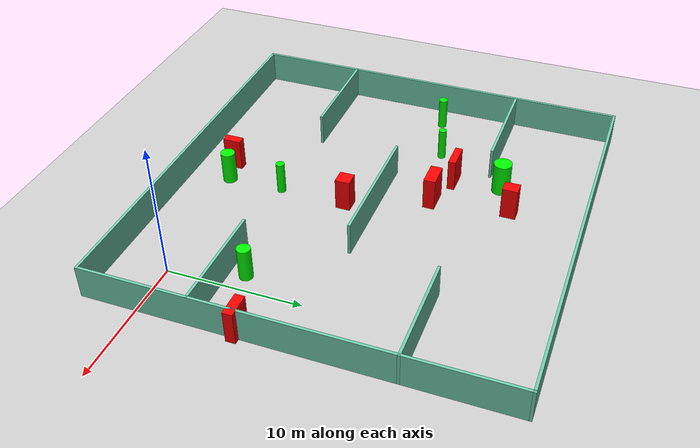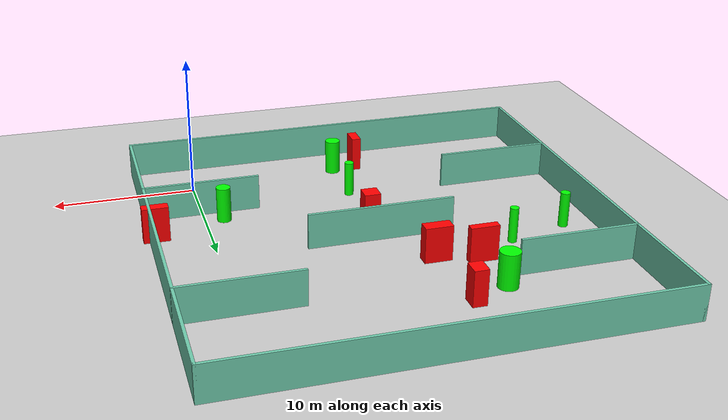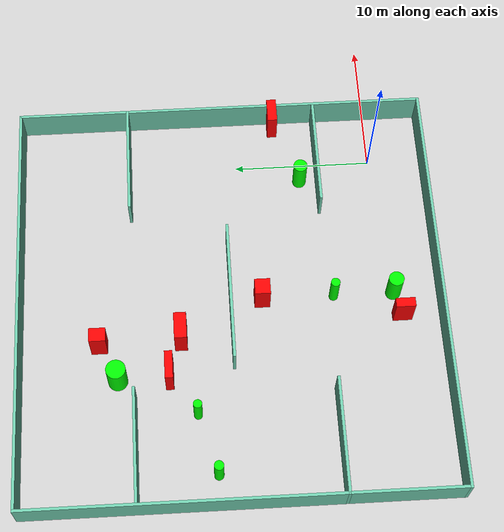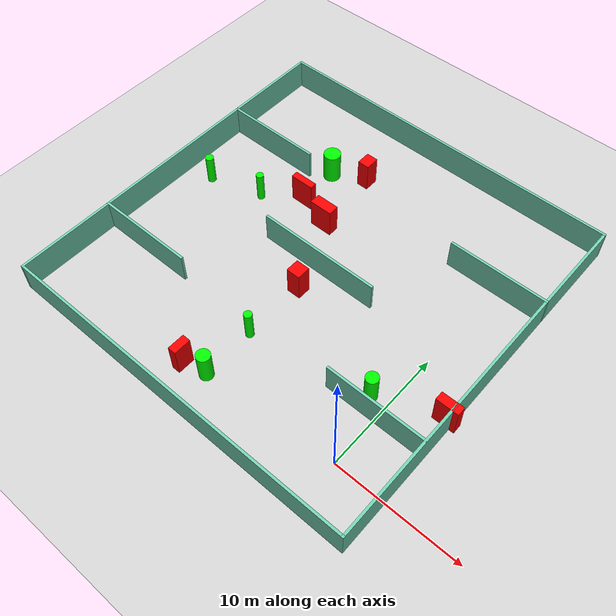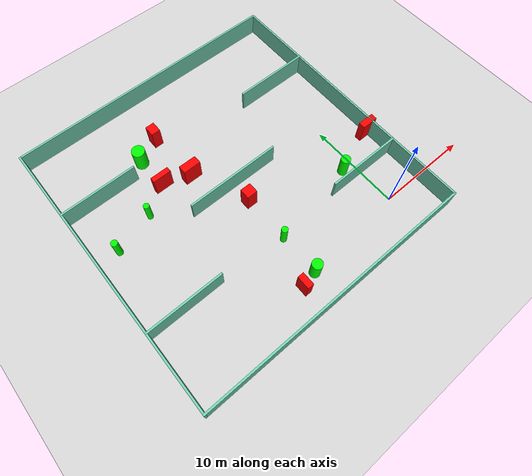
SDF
<sdf version="1.7">
 <world name="default">
  <light name="sun" type="directional">
   <pose>0 0 10 0 -0 0</pose>
   <diffuse>0.8 0.8 0.8 1</diffuse>
   <specular>0.2 0.2 0.2 1</specular>
   <attenuation>
    <range>1000</range>
    <constant>0.9</constant>
    <linear>0.01</linear>
    <quadratic>0.001</quadratic>
   </attenuation>
   <direction>-0.5 0.1 -0.9</direction>
   <spot><inner_angle>0</inner_angle><outer_angle>0</outer_angle><falloff>0</falloff></spot>
  </light>
  <model name="ground_plane">
   <static>1</static>
   <link name="link">
    <collision name="collision">
     <geometry><plane><normal>0 0 1</normal><size>100 100</size></plane></geometry>
     <surface>
      <contact><collide_bitmask>65535</collide_bitmask></contact>
      <friction><ode><mu>100</mu><mu2>50</mu2></ode></friction>
     </surface>
    </collision>
    <visual name="visual">
     <cast_shadows>0</cast_shadows>
     <geometry><plane><normal>0 0 1</normal><size>100 100</size></plane></geometry>
     <material>
      <script><uri>file://media/materials/scripts/gazebo.material</uri><name>Gazebo/Grey</name></script>
     </material>
    </visual>
   </link>
  </model>
  <gravity>0 0 -9.8</gravity>
  <magnetic_field>6e-06 2.3e-05 -4.2e-05</magnetic_field>
  <atmosphere type="adiabatic"/>
  <physics type="ode">
   <max_step_size>0.001</max_step_size>
   <real_time_factor>1</real_time_factor>
   <real_time_update_rate>1000</real_time_update_rate>
  </physics>
  <scene><ambient>0.4 0.4 0.4 1</ambient><background>0.7 0.7 0.7 1</background><shadows>1</shadows></scene>
  <spherical_coordinates>
   <surface_model>EARTH_WGS84</surface_model>
   <latitude_deg>0</latitude_deg>
   <longitude_deg>0</longitude_deg>
   <elevation>0</elevation>
   <heading_deg>0</heading_deg>
  </spherical_coordinates>
  <model name="my_base_walls">
   <link name="Wall_10">
    <collision name="Wall_10_Collision">
     <geometry><box><size>8.2 0.2 2.5</size></box></geometry>
     <pose>0 0 1.25 0 -0 0</pose>
    </collision>
    <visual name="Wall_10_Visual">
     <pose>0 0 1.25 0 -0 0</pose>
     <geometry><box><size>8.2 0.2 2.5</size></box></geometry>
     <material>
      <script><uri>file://media/materials/scripts/gazebo.material</uri><name>Gazebo/Grey</name></script>
      <ambient>0.435294 0.796078 0.67451 1</ambient>
     </material>
     <meta><layer>0</layer></meta>
    </visual>
    <pose>-11 -7 0 0 -0 0</pose>
   </link>
   <link name="Wall_12">
    <collision name="Wall_12_Collision">
     <geometry><box><size>8.2 0.2 2.5</size></box></geometry>
     <pose>0 0 1.25 0 -0 0</pose>
    </collision>
    <visual name="Wall_12_Visual">
     <pose>0 0 1.25 0 -0 0</pose>
     <geometry><box><size>8.2 0.2 2.5</size></box></geometry>
     <material>
      <script><uri>file://media/materials/scripts/gazebo.material</uri><name>Gazebo/Grey</name></script>
      <ambient>0.435294 0.796078 0.67451 1</ambient>
     </material>
     <meta><layer>0</layer></meta>
    </visual>
    <pose>-11 7 0 0 -0 0</pose>
   </link>
   <link name="Wall_14">
    <collision name="Wall_14_Collision">
     <geometry><box><size>8.2 0.2 2.5</size></box></geometry>
     <pose>0 0 1.25 0 -0 0</pose>
    </collision>
    <visual name="Wall_14_Visual">
     <pose>0 0 1.25 0 -0 0</pose>
     <geometry><box><size>8.2 0.2 2.5</size></box></geometry>
     <material>
      <script><uri>file://media/materials/scripts/gazebo.material</uri><name>Gazebo/Grey</name></script>
      <ambient>0.435294 0.796078 0.67451 1</ambient>
     </material>
     <meta><layer>0</layer></meta>
    </visual>
    <pose>11 7 0 0 -0 3.14159</pose>
   </link>
   <link name="Wall_16">
    <collision name="Wall_16_Collision">
     <geometry><box><size>10.2 0.2 2.5</size></box></geometry>
     <pose>0 0 1.25 0 -0 0</pose>
    </collision>
    <visual name="Wall_16_Visual">
     <pose>0 0 1.25 0 -0 0</pose>
     <geometry><box><size>10.2 0.2 2.5</size></box></geometry>
     <material>
      <script><uri>file://media/materials/scripts/gazebo.material</uri><name>Gazebo/Grey</name></script>
      <ambient>0.435294 0.796078 0.67451 1</ambient>
     </material>
     <meta><layer>0</layer></meta>
    </visual>
    <pose>0 0 0 0 -0 3.14159</pose>
   </link>
   <link name="Wall_2">
    <collision name="Wall_2_Collision">
     <geometry><box><size>30.2 0.2 2.5</size></box></geometry>
     <pose>0 0 1.25 0 -0 0</pose>
    </collision>
    <visual name="Wall_2_Visual">
     <pose>0 0 1.25 0 -0 0</pose>
     <geometry><box><size>30.2 0.2 2.5</size></box></geometry>
     <material>
      <script><uri>file://media/materials/scripts/gazebo.material</uri><name>Gazebo/Grey</name></script>
      <ambient>0.435294 0.796078 0.67451 1</ambient>
     </material>
     <meta><layer>0</layer></meta>
    </visual>
    <pose>0 -15 0 0 -0 3.14159</pose>
   </link>
   <link name="Wall_3">
    <collision name="Wall_3_Collision">
     <geometry><box><size>30.2 0.2 2.5</size></box></geometry>
     <pose>0 0 1.25 0 -0 0</pose>
    </collision>
    <visual name="Wall_3_Visual">
     <pose>0 0 1.25 0 -0 0</pose>
     <geometry><box><size>30.2 0.2 2.5</size></box></geometry>
     <material>
      <script><uri>file://media/materials/scripts/gazebo.material</uri><name>Gazebo/Grey</name></script>
      <ambient>0.435294 0.796078 0.67451 1</ambient>
     </material>
     <meta><layer>0</layer></meta>
    </visual>
    <pose>-15 0 0 0 -0 1.5708</pose>
   </link>
   <link name="Wall_4">
    <collision name="Wall_4_Collision">
     <geometry><box><size>30.2 0.2 2.5</size></box></geometry>
     <pose>0 0 1.25 0 -0 0</pose>
    </collision>
    <visual name="Wall_4_Visual">
     <pose>0 0 1.25 0 -0 0</pose>
     <geometry><box><size>30.2 0.2 2.5</size></box></geometry>
     <material>
      <script><uri>file://media/materials/scripts/gazebo.material</uri><name>Gazebo/Grey</name></script>
      <ambient>0.435294 0.796078 0.67451 1</ambient>
     </material>
     <meta><layer>0</layer></meta>
    </visual>
    <pose>0 15 0 0 -0 0</pose>
   </link>
   <link name="Wall_6">
    <collision name="Wall_6_Collision">
     <geometry><box><size>30.2 0.2 2.5</size></box></geometry>
     <pose>0 0 1.25 0 -0 0</pose>
    </collision>
    <visual name="Wall_6_Visual">
     <pose>0 0 1.25 0 -0 0</pose>
     <geometry><box><size>30.2 0.2 2.5</size></box></geometry>
     <material>
      <script><uri>file://media/materials/scripts/gazebo.material</uri><name>Gazebo/Grey</name></script>
      <ambient>0.435294 0.796078 0.67451 1</ambient>
     </material>
     <meta><layer>0</layer></meta>
    </visual>
    <pose>15 0 0 0 -0 1.5708</pose>
   </link>
   <link name="Wall_8">
    <collision name="Wall_8_Collision">
     <geometry><box><size>8.2 0.2 2.5</size></box></geometry>
     <pose>0 0 1.25 0 -0 0</pose>
    </collision>
    <visual name="Wall_8_Visual">
     <pose>0 0 1.25 0 -0 0</pose>
     <geometry><box><size>8.2 0.2 2.5</size></box></geometry>
     <material>
      <script><uri>file://media/materials/scripts/gazebo.material</uri><name>Gazebo/Grey</name></script>
      <ambient>0.435294 0.796078 0.67451 1</ambient>
     </material>
     <meta><layer>0</layer></meta>
    </visual>
    <pose>11 -7 0 0 -0 3.14159</pose>
   </link>
   <static>1</static>
   <pose>-11 11 0 0 -0 0</pose>
  </model>
  <model name="cylinder1">
   <static>1</static>
   <link name="link">
    <inertial>
     <mass>1</mass>
     <inertia><ixx>0.5</ixx><ixy>0</ixy><ixz>0</ixz><iyy>0.5</iyy><iyz>0</iyz><izz>1</izz></inertia>
    </inertial>
    <collision name="collision">
     <geometry><cylinder><radius>0.3366861672104046</radius><length>2.5</length></cylinder></geometry>
    </collision>
    <visual name="visual">
     <geometry><cylinder><radius>0.3366861672104046</radius><length>2.5</length></cylinder></geometry>
     <material>
      <ambient>0 1 0 1</ambient>
      <diffuse>0 1 0 1</diffuse>
      <specular>0.1 0.1 0.1 1</specular>
      <emissive>0 0 0 0</emissive>
     </material>
    </visual>
   </link>
   <pose>-23.702162040381364 12.46133202046187 1.25 0 0 0</pose>
  </model>
  <model name="cylinder2">
   <static>1</static>
   <link name="link">
    <inertial>
     <mass>1</mass>
     <inertia><ixx>0.5</ixx><ixy>0</ixy><ixz>0</ixz><iyy>0.5</iyy><iyz>0</iyz><izz>1</izz></inertia>
    </inertial>
    <collision name="collision">
     <geometry><cylinder><radius>0.6918408097810407</radius><length>2.5</length></cylinder></geometry>
    </collision>
    <visual name="visual">
     <geometry><cylinder><radius>0.6918408097810407</radius><length>2.5</length></cylinder></geometry>
     <material>
      <ambient>0 1 0 1</ambient>
      <diffuse>0 1 0 1</diffuse>
      <specular>0.1 0.1 0.1 1</specular>
      <emissive>0 0 0 0</emissive>
     </material>
    </visual>
   </link>
   <pose>-16.602370327350467 19.18861517111823 1.25 0 0 0</pose>
  </model>
  <model name="cylinder3">
   <static>1</static>
   <link name="link">
    <inertial>
     <mass>1</mass>
     <inertia><ixx>0.5</ixx><ixy>0</ixy><ixz>0</ixz><iyy>0.5</iyy><iyz>0</iyz><izz>1</izz></inertia>
    </inertial>
    <collision name="collision">
     <geometry><cylinder><radius>0.32463548138603376</radius><length>2.5</length></cylinder></geometry>
    </collision>
    <visual name="visual">
     <geometry><cylinder><radius>0.32463548138603376</radius><length>2.5</length></cylinder></geometry>
     <material>
      <ambient>0 1 0 1</ambient>
      <diffuse>0 1 0 1</diffuse>
      <specular>0.1 0.1 0.1 1</specular>
      <emissive>0 0 0 0</emissive>
     </material>
    </visual>
   </link>
   <pose>-10.91864391184857 3.570885555307207 1.25 0 0 0</pose>
  </model>
  <model name="cylinder4">
   <static>1</static>
   <link name="link">
    <inertial>
     <mass>1</mass>
     <inertia><ixx>0.5</ixx><ixy>0</ixy><ixz>0</ixz><iyy>0.5</iyy><iyz>0</iyz><izz>1</izz></inertia>
    </inertial>
    <collision name="collision">
     <geometry><cylinder><radius>0.4988295311312091</radius><length>2.5</length></cylinder></geometry>
    </collision>
    <visual name="visual">
     <geometry><cylinder><radius>0.4988295311312091</radius><length>2.5</length></cylinder></geometry>
     <material>
      <ambient>0 1 0 1</ambient>
      <diffuse>0 1 0 1</diffuse>
      <specular>0.1 0.1 0.1 1</specular>
      <emissive>0 0 0 0</emissive>
     </material>
    </visual>
   </link>
   <pose>-1.3348234467473965 5.305463349503917 1.25 0 0 0</pose>
  </model>
  <model name="cylinder5">
   <static>1</static>
   <link name="link">
    <inertial>
     <mass>1</mass>
     <inertia><ixx>0.5</ixx><ixy>0</ixy><ixz>0</ixz><iyy>0.5</iyy><iyz>0</iyz><izz>1</izz></inertia>
    </inertial>
    <collision name="collision">
     <geometry><cylinder><radius>0.5422897868243515</radius><length>2.5</length></cylinder></geometry>
    </collision>
    <visual name="visual">
     <geometry><cylinder><radius>0.5422897868243515</radius><length>2.5</length></cylinder></geometry>
     <material>
      <ambient>0 1 0 1</ambient>
      <diffuse>0 1 0 1</diffuse>
      <specular>0.1 0.1 0.1 1</specular>
      <emissive>0 0 0 0</emissive>
     </material>
    </visual>
   </link>
   <pose>-10.877294832775364 -0.7552831342733426 1.25 0 0 0</pose>
  </model>
  <model name="cylinder6">
   <static>1</static>
   <link name="link">
    <inertial>
     <mass>1</mass>
     <inertia><ixx>0.5</ixx><ixy>0</ixy><ixz>0</ixz><iyy>0.5</iyy><iyz>0</iyz><izz>1</izz></inertia>
    </inertial>
    <collision name="collision">
     <geometry><cylinder><radius>0.30297235422783514</radius><length>2.5</length></cylinder></geometry>
    </collision>
    <visual name="visual">
     <geometry><cylinder><radius>0.30297235422783514</radius><length>2.5</length></cylinder></geometry>
     <material>
      <ambient>0 1 0 1</ambient>
      <diffuse>0 1 0 1</diffuse>
      <specular>0.1 0.1 0.1 1</specular>
      <emissive>0 0 0 0</emissive>
     </material>
    </visual>
   </link>
   <pose>-19.366919993052136 13.691720748011068 1.25 0 0 0</pose>
  </model>
  <model name="box1">
   <static>1</static>
   <link name="link">
    <inertial>
     <mass>1</mass>
     <inertia><ixx>0.083</ixx><ixy>0</ixy><ixz>0</ixz><iyy>0.083</iyy><iyz>0</iyz><izz>0.083</izz></inertia>
    </inertial>
    <collision name="collision">
     <geometry><box><size>0.6646105112915915 1.38016031239596 2.5</size></box></geometry>
    </collision>
    <visual name="visual">
     <geometry><box><size>0.6646105112915915 1.38016031239596 2.5</size></box></geometry>
     <material>
      <ambient>1 0 0 1</ambient>
      <diffuse>1 0 0 1</diffuse>
      <specular>0.1 0.1 0.1 1</specular>
      <emissive>0 0 0 0</emissive>
     </material>
    </visual>
    <sensor name="my_contact" type="contact">
     <contact><collision>box_collision</collision><topic>__default_topic__</topic></contact>
    </sensor>
   </link>
   <pose>-12.707414153708706 -1.2045842454463438 1.25 0 0 0</pose>
  </model>
  <model name="box2">
   <static>1</static>
   <link name="link">
    <inertial>
     <mass>1</mass>
     <inertia><ixx>0.083</ixx><ixy>0</ixy><ixz>0</ixz><iyy>0.083</iyy><iyz>0</iyz><izz>0.083</izz></inertia>
    </inertial>
    <collision name="collision">
     <geometry><box><size>0.9755523833842844 1.1578142548125228 2.5</size></box></geometry>
    </collision>
    <visual name="visual">
     <geometry><box><size>0.9755523833842844 1.1578142548125228 2.5</size></box></geometry>
     <material>
      <ambient>1 0 0 1</ambient>
      <diffuse>1 0 0 1</diffuse>
      <specular>0.1 0.1 0.1 1</specular>
      <emissive>0 0 0 0</emissive>
     </material>
    </visual>
    <sensor name="my_contact" type="contact">
     <contact><collision>box_collision</collision><topic>__default_topic__</topic></contact>
    </sensor>
   </link>
   <pose>-13.978465911164013 20.44308207293779 1.25 0 0 0</pose>
  </model>
  <model name="box3">
   <static>1</static>
   <link name="link">
    <inertial>
     <mass>1</mass>
     <inertia><ixx>0.083</ixx><ixy>0</ixy><ixz>0</ixz><iyy>0.083</iyy><iyz>0</iyz><izz>0.083</izz></inertia>
    </inertial>
    <collision name="collision">
     <geometry><box><size>1.902773127935524 0.8839393217982818 2.5</size></box></geometry>
    </collision>
    <visual name="visual">
     <geometry><box><size>1.902773127935524 0.8839393217982818 2.5</size></box></geometry>
     <material>
      <ambient>1 0 0 1</ambient>
      <diffuse>1 0 0 1</diffuse>
      <specular>0.1 0.1 0.1 1</specular>
      <emissive>0 0 0 0</emissive>
     </material>
    </visual>
    <sensor name="my_contact" type="contact">
     <contact><collision>box_collision</collision><topic>__default_topic__</topic></contact>
    </sensor>
   </link>
   <pose>-13.565470123169478 14.66849415445477 1.25 0 0 0</pose>
  </model>
  <model name="box4">
   <static>1</static>
   <link name="link">
    <inertial>
     <mass>1</mass>
     <inertia><ixx>0.083</ixx><ixy>0</ixy><ixz>0</ixz><iyy>0.083</iyy><iyz>0</iyz><izz>0.083</izz></inertia>
    </inertial>
    <collision name="collision">
     <geometry><box><size>1.9755246586066368 0.5608206509872209 2.5</size></box></geometry>
    </collision>
    <visual name="visual">
     <geometry><box><size>1.9755246586066368 0.5608206509872209 2.5</size></box></geometry>
     <material>
      <ambient>1 0 0 1</ambient>
      <diffuse>1 0 0 1</diffuse>
      <specular>0.1 0.1 0.1 1</specular>
      <emissive>0 0 0 0</emissive>
     </material>
    </visual>
    <sensor name="my_contact" type="contact">
     <contact><collision>box_collision</collision><topic>__default_topic__</topic></contact>
    </sensor>
   </link>
   <pose>-16.41457615473773 15.562510729309686 1.25 0 0 0</pose>
  </model>
  <model name="box5">
   <static>1</static>
   <link name="link">
    <inertial>
     <mass>1</mass>
     <inertia><ixx>0.083</ixx><ixy>0</ixy><ixz>0</ixz><iyy>0.083</iyy><iyz>0</iyz><izz>0.083</izz></inertia>
    </inertial>
    <collision name="collision">
     <geometry><box><size>1.7959171291197795 0.7112709706216473 2.5</size></box></geometry>
    </collision>
    <visual name="visual">
     <geometry><box><size>1.7959171291197795 0.7112709706216473 2.5</size></box></geometry>
     <material>
      <ambient>1 0 0 1</ambient>
      <diffuse>1 0 0 1</diffuse>
      <specular>0.1 0.1 0.1 1</specular>
      <emissive>0 0 0 0</emissive>
     </material>
    </visual>
    <sensor name="my_contact" type="contact">
     <contact><collision>box_collision</collision><topic>__default_topic__</topic></contact>
    </sensor>
   </link>
   <pose>3.6058832017078757 7.094823438004575 1.25 0 0 0</pose>
  </model>
  <model name="box6">
   <static>1</static>
   <link name="link">
    <inertial>
     <mass>1</mass>
     <inertia><ixx>0.083</ixx><ixy>0</ixy><ixz>0</ixz><iyy>0.083</iyy><iyz>0</iyz><izz>0.083</izz></inertia>
    </inertial>
    <collision name="collision">
     <geometry><box><size>1.1352159282341465 1.1055795669479394 2.5</size></box></geometry>
    </collision>
    <visual name="visual">
     <geometry><box><size>1.1352159282341465 1.1055795669479394 2.5</size></box></geometry>
     <material>
      <ambient>1 0 0 1</ambient>
      <diffuse>1 0 0 1</diffuse>
      <specular>0.1 0.1 0.1 1</specular>
      <emissive>0 0 0 0</emissive>
     </material>
    </visual>
    <sensor name="my_contact" type="contact">
     <contact><collision>box_collision</collision><topic>__default_topic__</topic></contact>
    </sensor>
   </link>
   <pose>-10.928086453544688 8.745569043722146 1.25 0 0 0</pose>
  </model>
 </world>
</sdf>
